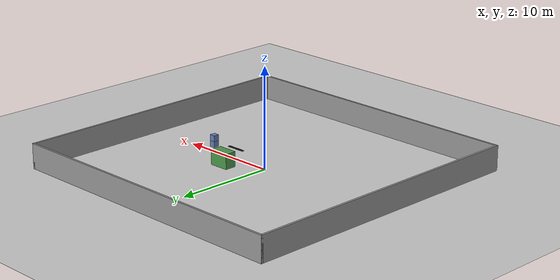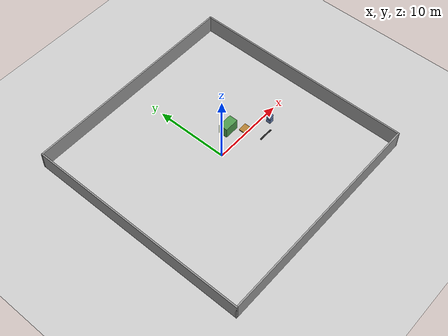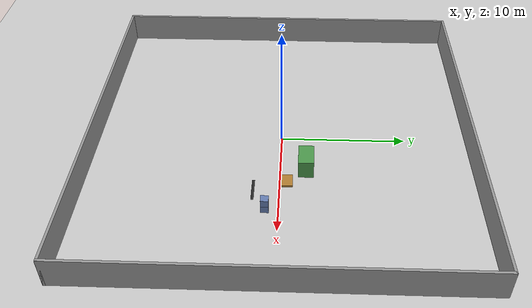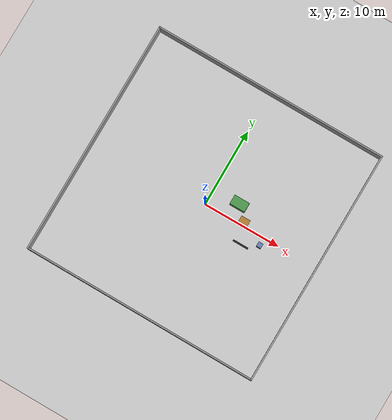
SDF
<?xml version="1.0"?>
<sdf version="1.6">
  <world name="factory">

    <physics type="ode">
      <!-- 500 step/s x 0.002 s = 1x 实时; step 与 update_rate 必须一起改 -->
      <max_step_size>0.002</max_step_size>
      <real_time_update_rate>500.0</real_time_update_rate>
      <real_time_factor>1</real_time_factor>
    </physics>

    <include>
      <uri>model://ground_plane</uri>
    </include>
    <include>
      <uri>model://sun</uri>
    </include>

    <model name="outer_wall_north">
      <static>1</static>
      <pose>0 15.1 1.25 0 0 0</pose>
      <link name="link">
        <collision name="c"><geometry><box><size>30.4 0.2 2.5</size></box></geometry></collision>
        <visual name="v"><geometry><box><size>30.4 0.2 2.5</size></box></geometry>
          <material><ambient>0.6 0.6 0.6 1</ambient><diffuse>0.6 0.6 0.6 1</diffuse></material></visual>
      </link>
    </model>
    <model name="outer_wall_south">
      <static>1</static>
      <pose>0 -15.1 1.25 0 0 0</pose>
      <link name="link">
        <collision name="c"><geometry><box><size>30.4 0.2 2.5</size></box></geometry></collision>
        <visual name="v"><geometry><box><size>30.4 0.2 2.5</size></box></geometry>
          <material><ambient>0.6 0.6 0.6 1</ambient><diffuse>0.6 0.6 0.6 1</diffuse></material></visual>
      </link>
    </model>
    <model name="outer_wall_east">
      <static>1</static>
      <pose>15.1 0 1.25 0 0 0</pose>
      <link name="link">
        <collision name="c"><geometry><box><size>0.2 30.4 2.5</size></box></geometry></collision>
        <visual name="v"><geometry><box><size>0.2 30.4 2.5</size></box></geometry>
          <material><ambient>0.6 0.6 0.6 1</ambient><diffuse>0.6 0.6 0.6 1</diffuse></material></visual>
      </link>
    </model>
    <model name="outer_wall_west">
      <static>1</static>
      <pose>-15.1 0 1.25 0 0 0</pose>
      <link name="link">
        <collision name="c"><geometry><box><size>0.2 30.4 2.5</size></box></geometry></collision>
        <visual name="v"><geometry><box><size>0.2 30.4 2.5</size></box></geometry>
          <material><ambient>0.6 0.6 0.6 1</ambient><diffuse>0.6 0.6 0.6 1</diffuse></material></visual>
      </link>
    </model>

    <!-- 托盘: 1.2x1.0x0.15, x=5.0 y=0.5 -->
    <model name="pallet">
      <static>1</static>
      <pose>5.0 0.5 0.075 0 0 0</pose>
      <link name="link">
        <collision name="c"><geometry><box><size>1.2 1.0 0.15</size></box></geometry></collision>
        <visual name="v"><geometry><box><size>1.2 1.0 0.15</size></box></geometry>
          <material><ambient>0.7 0.5 0.2 1</ambient><diffuse>0.7 0.5 0.2 1</diffuse></material></visual>
      </link>
    </model>

    <!-- 箱子堆: 两个 0.6 立方叠放, x=8.0 y=-1.0 -->
    <model name="stacks">
      <static>1</static>
      <link name="link">
        <collision name="c1"><pose>8.0 -1.0 0.3 0 0 0</pose>
          <geometry><box><size>0.6 0.6 0.6</size></box></geometry></collision>
        <visual name="v1"><pose>8.0 -1.0 0.3 0 0 0</pose>
          <geometry><box><size>0.6 0.6 0.6</size></box></geometry>
          <material><ambient>0.4 0.5 0.7 1</ambient><diffuse>0.4 0.5 0.7 1</diffuse></material></visual>
        <collision name="c2"><pose>8.0 -1.0 0.9 0 0 0</pose>
          <geometry><box><size>0.6 0.6 0.6</size></box></geometry></collision>
        <visual name="v2"><pose>8.0 -1.0 0.9 0 0 0</pose>
          <geometry><box><size>0.6 0.6 0.6</size></box></geometry>
          <material><ambient>0.4 0.5 0.7 1</ambient><diffuse>0.4 0.5 0.7 1</diffuse></material></visual>
      </link>
    </model>

    <!-- 大机器: 2.0x1.2x1.5, x=3.5 y=2.0 -->
    <model name="machine">
      <static>1</static>
      <pose>3.5 2.0 0.75 0 0 0</pose>
      <link name="link">
        <collision name="c"><geometry><box><size>2.0 1.2 1.5</size></box></geometry></collision>
        <visual name="v"><geometry><box><size>2.0 1.2 1.5</size></box></geometry>
          <material><ambient>0.3 0.6 0.3 1</ambient><diffuse>0.3 0.6 0.3 1</diffuse></material></visual>
      </link>
    </model>

    <!-- 低台阶/线槽: 2.0x0.2x0.06, x=6.0 y=-2.0 -->
    <model name="trench">
      <static>1</static>
      <pose>6.0 -2.0 0.03 0 0 0</pose>
      <link name="link">
        <collision name="c"><geometry><box><size>2.0 0.2 0.06</size></box></geometry></collision>
        <visual name="v"><geometry><box><size>2.0 0.2 0.06</size></box></geometry>
          <material><ambient>0.15 0.15 0.15 1</ambient><diffuse>0.15 0.15 0.15 1</diffuse></material></visual>
      </link>
    </model>

  </world>
</sdf>
